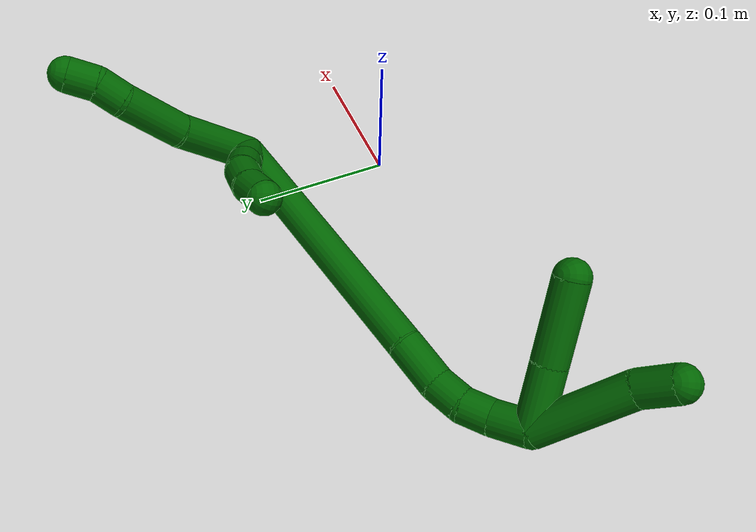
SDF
<sdf version="1.7">
 <world name="default">
  <model name="6">
   <static>0</static>
   <link name="6">
    <collision name="collision-cylinder-e_1_2_8">
     <pose>0.002443 -0.002626 0.030641 0.085496 0.079257 0.003392</pose>
     <geometry><cylinder><radius>0.0125</radius><length>0.061701</length></cylinder></geometry>
     <surface>
      <friction><ode><mu>1.16</mu><mu2>1.16</mu2><slip1>0</slip1><slip2>0</slip2></ode></friction>
      <contact><ode><kp>1e+06</kp><kd>1</kd><max_vel>0</max_vel><min_depth>0.001</min_depth></ode></contact>
     </surface>
    </collision>
    <visual name="visual-cylinder-e_1_2_8">
     <pose>0.002443 -0.002626 0.030641 0.085496 0.079257 0.003392</pose>
     <geometry><cylinder><radius>0.0125</radius><length>0.061701</length></cylinder></geometry>
     <material><ambient>0 0.392157 0.003922 1</ambient></material>
    </visual>
    <collision name="collision-cylinder-e_2_8_9">
     <pose>0.010533 -0.005071 0.084227 -0.007898 0.24136 -0.000958</pose>
     <geometry><cylinder><radius>0.0125</radius><length>0.047259</length></cylinder></geometry>
     <surface>
      <friction><ode><mu>1.16</mu><mu2>1.16</mu2><slip1>0</slip1><slip2>0</slip2></ode></friction>
      <contact><ode><kp>1e+06</kp><kd>1</kd><max_vel>0</max_vel><min_depth>0.001</min_depth></ode></contact>
     </surface>
    </collision>
    <visual name="visual-cylinder-e_2_8_9">
     <pose>0.010533 -0.005071 0.084227 -0.007898 0.24136 -0.000958</pose>
     <geometry><cylinder><radius>0.0125</radius><length>0.047259</length></cylinder></geometry>
     <material><ambient>0 0.392157 0.003922 1</ambient></material>
    </visual>
    <collision name="collision-cylinder-e_3_9_10">
     <pose>0.019716 -0.002422 0.116341 -0.26293 0.356369 -0.047618</pose>
     <geometry><cylinder><radius>0.0125</radius><length>0.020266</length></cylinder></geometry>
     <surface>
      <friction><ode><mu>1.16</mu><mu2>1.16</mu2><slip1>0</slip1><slip2>0</slip2></ode></friction>
      <contact><ode><kp>1e+06</kp><kd>1</kd><max_vel>0</max_vel><min_depth>0.001</min_depth></ode></contact>
     </surface>
    </collision>
    <visual name="visual-cylinder-e_3_9_10">
     <pose>0.019716 -0.002422 0.116341 -0.26293 0.356369 -0.047618</pose>
     <geometry><cylinder><radius>0.0125</radius><length>0.020266</length></cylinder></geometry>
     <material><ambient>0 0.392157 0.003922 1</ambient></material>
    </visual>
    <collision name="collision-cylinder-e_4_10_6">
     <pose>0.023986 0.00388 0.135136 -0.378952 0.070813 -0.013586</pose>
     <geometry><cylinder><radius>0.0125</radius><length>0.020774</length></cylinder></geometry>
     <surface>
      <friction><ode><mu>1.16</mu><mu2>1.16</mu2><slip1>0</slip1><slip2>0</slip2></ode></friction>
      <contact><ode><kp>1e+06</kp><kd>1</kd><max_vel>0</max_vel><min_depth>0.001</min_depth></ode></contact>
     </surface>
    </collision>
    <visual name="visual-cylinder-e_4_10_6">
     <pose>0.023986 0.00388 0.135136 -0.378952 0.070813 -0.013586</pose>
     <geometry><cylinder><radius>0.0125</radius><length>0.020774</length></cylinder></geometry>
     <material><ambient>0 0.392157 0.003922 1</ambient></material>
    </visual>
    <collision name="collision-cylinder-e_1_2_11">
     <pose>-0.003854 -0.011042 0.006918 1.01113 -0.287576 -0.159952</pose>
     <geometry><cylinder><radius>0.0125</radius><length>0.027176</length></cylinder></geometry>
     <surface>
      <friction><ode><mu>1.16</mu><mu2>1.16</mu2><slip1>0</slip1><slip2>0</slip2></ode></friction>
      <contact><ode><kp>1e+06</kp><kd>1</kd><max_vel>0</max_vel><min_depth>0.001</min_depth></ode></contact>
     </surface>
    </collision>
    <visual name="visual-cylinder-e_1_2_11">
     <pose>-0.003854 -0.011042 0.006918 1.01113 -0.287576 -0.159952</pose>
     <geometry><cylinder><radius>0.0125</radius><length>0.027176</length></cylinder></geometry>
     <material><ambient>0 0.392157 0.003922 1</ambient></material>
    </visual>
    <collision name="collision-cylinder-e_2_11_12">
     <pose>-0.011065 -0.032324 0.020072 1.02374 -0.272997 -0.154028</pose>
     <geometry><cylinder><radius>0.0125</radius><length>0.024901</length></cylinder></geometry>
     <surface>
      <friction><ode><mu>1.16</mu><mu2>1.16</mu2><slip1>0</slip1><slip2>0</slip2></ode></friction>
      <contact><ode><kp>1e+06</kp><kd>1</kd><max_vel>0</max_vel><min_depth>0.001</min_depth></ode></contact>
     </surface>
    </collision>
    <visual name="visual-cylinder-e_2_11_12">
     <pose>-0.011065 -0.032324 0.020072 1.02374 -0.272997 -0.154028</pose>
     <geometry><cylinder><radius>0.0125</radius><length>0.024901</length></cylinder></geometry>
     <material><ambient>0 0.392157 0.003922 1</ambient></material>
    </visual>
    <collision name="collision-cylinder-e_3_12_13">
     <pose>-0.018614 -0.054041 0.028882 1.35024 -0.342345 -0.27505</pose>
     <geometry><cylinder><radius>0.0125</radius><length>0.024973</length></cylinder></geometry>
     <surface>
      <friction><ode><mu>1.16</mu><mu2>1.16</mu2><slip1>0</slip1><slip2>0</slip2></ode></friction>
      <contact><ode><kp>1e+06</kp><kd>1</kd><max_vel>0</max_vel><min_depth>0.001</min_depth></ode></contact>
     </surface>
    </collision>
    <visual name="visual-cylinder-e_3_12_13">
     <pose>-0.018614 -0.054041 0.028882 1.35024 -0.342345 -0.27505</pose>
     <geometry><cylinder><radius>0.0125</radius><length>0.024973</length></cylinder></geometry>
     <material><ambient>0 0.392157 0.003922 1</ambient></material>
    </visual>
    <collision name="collision-cylinder-e_4_13_5">
     <pose>-0.025432 -0.076682 0.03182 1.53812 -0.23093 -0.223567</pose>
     <geometry><cylinder><radius>0.0125</radius><length>0.022949</length></cylinder></geometry>
     <surface>
      <friction><ode><mu>1.16</mu><mu2>1.16</mu2><slip1>0</slip1><slip2>0</slip2></ode></friction>
      <contact><ode><kp>1e+06</kp><kd>1</kd><max_vel>0</max_vel><min_depth>0.001</min_depth></ode></contact>
     </surface>
    </collision>
    <visual name="visual-cylinder-e_4_13_5">
     <pose>-0.025432 -0.076682 0.03182 1.53812 -0.23093 -0.223567</pose>
     <geometry><cylinder><radius>0.0125</radius><length>0.022949</length></cylinder></geometry>
     <material><ambient>0 0.392157 0.003922 1</ambient></material>
    </visual>
    <collision name="collision-cylinder-e_1_2_14">
     <pose>-0.05172 -0.077939 -0.028065 1.91643 -0.558132 -0.774314</pose>
     <geometry><cylinder><radius>0.0125</radius><length>0.195315</length></cylinder></geometry>
     <surface>
      <friction><ode><mu>1.16</mu><mu2>1.16</mu2><slip1>0</slip1><slip2>0</slip2></ode></friction>
      <contact><ode><kp>1e+06</kp><kd>1</kd><max_vel>0</max_vel><min_depth>0.001</min_depth></ode></contact>
     </surface>
    </collision>
    <visual name="visual-cylinder-e_1_2_14">
     <pose>-0.05172 -0.077939 -0.028065 1.91643 -0.558132 -0.774314</pose>
     <geometry><cylinder><radius>0.0125</radius><length>0.195315</length></cylinder></geometry>
     <material><ambient>0 0.392157 0.003922 1</ambient></material>
    </visual>
    <collision name="collision-cylinder-e_2_14_15">
     <pose>-0.113321 -0.168262 -0.06273 2.06048 -0.613495 -0.971191</pose>
     <geometry><cylinder><radius>0.0125</radius><length>0.034327</length></cylinder></geometry>
     <surface>
      <friction><ode><mu>1.16</mu><mu2>1.16</mu2><slip1>0</slip1><slip2>0</slip2></ode></friction>
      <contact><ode><kp>1e+06</kp><kd>1</kd><max_vel>0</max_vel><min_depth>0.001</min_depth></ode></contact>
     </surface>
    </collision>
    <visual name="visual-cylinder-e_2_14_15">
     <pose>-0.113321 -0.168262 -0.06273 2.06048 -0.613495 -0.971191</pose>
     <geometry><cylinder><radius>0.0125</radius><length>0.034327</length></cylinder></geometry>
     <material><ambient>0 0.392157 0.003922 1</ambient></material>
    </visual>
    <collision name="collision-cylinder-e_3_15_16">
     <pose>-0.127384 -0.190155 -0.073363 1.97184 -0.384733 -0.572162</pose>
     <geometry><cylinder><radius>0.0125</radius><length>0.022286</length></cylinder></geometry>
     <surface>
      <friction><ode><mu>1.16</mu><mu2>1.16</mu2><slip1>0</slip1><slip2>0</slip2></ode></friction>
      <contact><ode><kp>1e+06</kp><kd>1</kd><max_vel>0</max_vel><min_depth>0.001</min_depth></ode></contact>
     </surface>
    </collision>
    <visual name="visual-cylinder-e_3_15_16">
     <pose>-0.127384 -0.190155 -0.073363 1.97184 -0.384733 -0.572162</pose>
     <geometry><cylinder><radius>0.0125</radius><length>0.022286</length></cylinder></geometry>
     <material><ambient>0 0.392157 0.003922 1</ambient></material>
    </visual>
    <collision name="collision-cylinder-e_4_16_17">
     <pose>-0.132961 -0.208507 -0.083103 2.14403 -0.131711 -0.240973</pose>
     <geometry><cylinder><radius>0.0125</radius><length>0.021236</length></cylinder></geometry>
     <surface>
      <friction><ode><mu>1.16</mu><mu2>1.16</mu2><slip1>0</slip1><slip2>0</slip2></ode></friction>
      <contact><ode><kp>1e+06</kp><kd>1</kd><max_vel>0</max_vel><min_depth>0.001</min_depth></ode></contact>
     </surface>
    </collision>
    <visual name="visual-cylinder-e_4_16_17">
     <pose>-0.132961 -0.208507 -0.083103 2.14403 -0.131711 -0.240973</pose>
     <geometry><cylinder><radius>0.0125</radius><length>0.021236</length></cylinder></geometry>
     <material><ambient>0 0.392157 0.003922 1</ambient></material>
    </visual>
    <collision name="collision-cylinder-e_5_17_1">
     <pose>-0.134173 -0.229693 -0.094073 1.97375 0.013605 0.020589</pose>
     <geometry><cylinder><radius>0.0125</radius><length>0.026837</length></cylinder></geometry>
     <surface>
      <friction><ode><mu>1.16</mu><mu2>1.16</mu2><slip1>0</slip1><slip2>0</slip2></ode></friction>
      <contact><ode><kp>1e+06</kp><kd>1</kd><max_vel>0</max_vel><min_depth>0.001</min_depth></ode></contact>
     </surface>
    </collision>
    <visual name="visual-cylinder-e_5_17_1">
     <pose>-0.134173 -0.229693 -0.094073 1.97375 0.013605 0.020589</pose>
     <geometry><cylinder><radius>0.0125</radius><length>0.026837</length></cylinder></geometry>
     <material><ambient>0 0.392157 0.003922 1</ambient></material>
    </visual>
    <collision name="collision-cylinder-e_1_1_18">
     <pose>-0.112496 -0.269487 -0.109462 1.92421 0.633565 0.879297</pose>
     <geometry><cylinder><radius>0.0125</radius><length>0.072613</length></cylinder></geometry>
     <surface>
      <friction><ode><mu>1.16</mu><mu2>1.16</mu2><slip1>0</slip1><slip2>0</slip2></ode></friction>
      <contact><ode><kp>1e+06</kp><kd>1</kd><max_vel>0</max_vel><min_depth>0.001</min_depth></ode></contact>
     </surface>
    </collision>
    <visual name="visual-cylinder-e_1_1_18">
     <pose>-0.112496 -0.269487 -0.109462 1.92421 0.633565 0.879297</pose>
     <geometry><cylinder><radius>0.0125</radius><length>0.072613</length></cylinder></geometry>
     <material><ambient>0 0.392157 0.003922 1</ambient></material>
    </visual>
    <collision name="collision-cylinder-e_2_18_4">
     <pose>-0.085856 -0.30929 -0.122505 1.80269 0.385191 0.483225</pose>
     <geometry><cylinder><radius>0.0125</radius><length>0.027387</length></cylinder></geometry>
     <surface>
      <friction><ode><mu>1.16</mu><mu2>1.16</mu2><slip1>0</slip1><slip2>0</slip2></ode></friction>
      <contact><ode><kp>1e+06</kp><kd>1</kd><max_vel>0</max_vel><min_depth>0.001</min_depth></ode></contact>
     </surface>
    </collision>
    <visual name="visual-cylinder-e_2_18_4">
     <pose>-0.085856 -0.30929 -0.122505 1.80269 0.385191 0.483225</pose>
     <geometry><cylinder><radius>0.0125</radius><length>0.027387</length></cylinder></geometry>
     <material><ambient>0 0.392157 0.003922 1</ambient></material>
    </visual>
    <collision name="collision-cylinder-e_1_1_19">
     <pose>-0.112451 -0.243974 -0.09839 1.11716 1.47101 1.02937</pose>
     <geometry><cylinder><radius>0.0125</radius><length>0.043294</length></cylinder></geometry>
     <surface>
      <friction><ode><mu>1.16</mu><mu2>1.16</mu2><slip1>0</slip1><slip2>0</slip2></ode></friction>
      <contact><ode><kp>1e+06</kp><kd>1</kd><max_vel>0</max_vel><min_depth>0.001</min_depth></ode></contact>
     </surface>
    </collision>
    <visual name="visual-cylinder-e_1_1_19">
     <pose>-0.112451 -0.243974 -0.09839 1.11716 1.47101 1.02937</pose>
     <geometry><cylinder><radius>0.0125</radius><length>0.043294</length></cylinder></geometry>
     <material><ambient>0 0.392157 0.003922 1</ambient></material>
    </visual>
    <collision name="collision-cylinder-e_2_19_3">
     <pose>-0.063066 -0.250139 -0.094185 0.913844 1.3814 0.771907</pose>
     <geometry><cylinder><radius>0.0125</radius><length>0.056706</length></cylinder></geometry>
     <surface>
      <friction><ode><mu>1.16</mu><mu2>1.16</mu2><slip1>0</slip1><slip2>0</slip2></ode></friction>
      <contact><ode><kp>1e+06</kp><kd>1</kd><max_vel>0</max_vel><min_depth>0.001</min_depth></ode></contact>
     </surface>
    </collision>
    <visual name="visual-cylinder-e_2_19_3">
     <pose>-0.063066 -0.250139 -0.094185 0.913844 1.3814 0.771907</pose>
     <geometry><cylinder><radius>0.0125</radius><length>0.056706</length></cylinder></geometry>
     <material><ambient>0 0.392157 0.003922 1</ambient></material>
    </visual>
    <collision name="collision-sphere-3">
     <pose>-0.035219 -0.254366 -0.090925 0 -0 0</pose>
     <geometry><sphere><radius>0.0125</radius></sphere></geometry>
     <surface>
      <friction><ode><mu>1.16</mu><mu2>1.16</mu2><slip1>0</slip1><slip2>0</slip2></ode></friction>
      <contact><ode><kp>1e+06</kp><kd>1</kd><max_vel>0</max_vel><min_depth>0.001</min_depth></ode></contact>
     </surface>
    </collision>
    <visual name="visual-sphere-3">
     <pose>-0.035219 -0.254366 -0.090925 0 -0 0</pose>
     <geometry><sphere><radius>0.0125</radius></sphere></geometry>
     <material><ambient>0 0.392157 0.003922 1</ambient></material>
    </visual>
    <collision name="collision-sphere-19">
     <pose>-0.090912 -0.245912 -0.097445 0 -0 0</pose>
     <geometry><sphere><radius>0.0125</radius></sphere></geometry>
     <surface>
      <friction><ode><mu>1.16</mu><mu2>1.16</mu2><slip1>0</slip1><slip2>0</slip2></ode></friction>
      <contact><ode><kp>1e+06</kp><kd>1</kd><max_vel>0</max_vel><min_depth>0.001</min_depth></ode></contact>
     </surface>
    </collision>
    <visual name="visual-sphere-19">
     <pose>-0.090912 -0.245912 -0.097445 0 -0 0</pose>
     <geometry><sphere><radius>0.0125</radius></sphere></geometry>
     <material><ambient>0 0.392157 0.003922 1</ambient></material>
    </visual>
    <collision name="collision-sphere-11">
     <pose>-0.007708 -0.022084 0.013836 0 -0 0</pose>
     <geometry><sphere><radius>0.0125</radius></sphere></geometry>
     <surface>
      <friction><ode><mu>1.16</mu><mu2>1.16</mu2><slip1>0</slip1><slip2>0</slip2></ode></friction>
      <contact><ode><kp>1e+06</kp><kd>1</kd><max_vel>0</max_vel><min_depth>0.001</min_depth></ode></contact>
     </surface>
    </collision>
    <visual name="visual-sphere-11">
     <pose>-0.007708 -0.022084 0.013836 0 -0 0</pose>
     <geometry><sphere><radius>0.0125</radius></sphere></geometry>
     <material><ambient>0 0.392157 0.003922 1</ambient></material>
    </visual>
    <collision name="collision-sphere-6">
     <pose>0.024721 0.007713 0.144762 0 -0 0</pose>
     <geometry><sphere><radius>0.0125</radius></sphere></geometry>
     <surface>
      <friction><ode><mu>1.16</mu><mu2>1.16</mu2><slip1>0</slip1><slip2>0</slip2></ode></friction>
      <contact><ode><kp>1e+06</kp><kd>1</kd><max_vel>0</max_vel><min_depth>0.001</min_depth></ode></contact>
     </surface>
    </collision>
    <visual name="visual-sphere-6">
     <pose>0.024721 0.007713 0.144762 0 -0 0</pose>
     <geometry><sphere><radius>0.0125</radius></sphere></geometry>
     <material><ambient>0 0.392157 0.003922 1</ambient></material>
    </visual>
    <collision name="collision-sphere-10">
     <pose>0.023251 4.7e-05 0.125511 0 -0 0</pose>
     <geometry><sphere><radius>0.0125</radius></sphere></geometry>
     <surface>
      <friction><ode><mu>1.16</mu><mu2>1.16</mu2><slip1>0</slip1><slip2>0</slip2></ode></friction>
      <contact><ode><kp>1e+06</kp><kd>1</kd><max_vel>0</max_vel><min_depth>0.001</min_depth></ode></contact>
     </surface>
    </collision>
    <visual name="visual-sphere-10">
     <pose>0.023251 4.7e-05 0.125511 0 -0 0</pose>
     <geometry><sphere><radius>0.0125</radius></sphere></geometry>
     <material><ambient>0 0.392157 0.003922 1</ambient></material>
    </visual>
    <collision name="collision-sphere-9">
     <pose>0.016181 -0.00489 0.10717 0 -0 0</pose>
     <geometry><sphere><radius>0.0125</radius></sphere></geometry>
     <surface>
      <friction><ode><mu>1.16</mu><mu2>1.16</mu2><slip1>0</slip1><slip2>0</slip2></ode></friction>
      <contact><ode><kp>1e+06</kp><kd>1</kd><max_vel>0</max_vel><min_depth>0.001</min_depth></ode></contact>
     </surface>
    </collision>
    <visual name="visual-sphere-9">
     <pose>0.016181 -0.00489 0.10717 0 -0 0</pose>
     <geometry><sphere><radius>0.0125</radius></sphere></geometry>
     <material><ambient>0 0.392157 0.003922 1</ambient></material>
    </visual>
    <collision name="collision-sphere-2">
     <geometry><sphere><radius>0.0125</radius></sphere></geometry>
     <surface>
      <friction><ode><mu>1.16</mu><mu2>1.16</mu2><slip1>0</slip1><slip2>0</slip2></ode></friction>
      <contact><ode><kp>1e+06</kp><kd>1</kd><max_vel>0</max_vel><min_depth>0.001</min_depth></ode></contact>
     </surface>
    </collision>
    <visual name="visual-sphere-2">
     <geometry><sphere><radius>0.0125</radius></sphere></geometry>
     <material><ambient>0 0.392157 0.003922 1</ambient></material>
    </visual>
    <collision name="collision-sphere-8">
     <pose>0.004885 -0.005252 0.061283 0 -0 0</pose>
     <geometry><sphere><radius>0.0125</radius></sphere></geometry>
     <surface>
      <friction><ode><mu>1.16</mu><mu2>1.16</mu2><slip1>0</slip1><slip2>0</slip2></ode></friction>
      <contact><ode><kp>1e+06</kp><kd>1</kd><max_vel>0</max_vel><min_depth>0.001</min_depth></ode></contact>
     </surface>
    </collision>
    <visual name="visual-sphere-8">
     <pose>0.004885 -0.005252 0.061283 0 -0 0</pose>
     <geometry><sphere><radius>0.0125</radius></sphere></geometry>
     <material><ambient>0 0.392157 0.003922 1</ambient></material>
    </visual>
    <collision name="collision-sphere-12">
     <pose>-0.014422 -0.042564 0.026309 0 -0 0</pose>
     <geometry><sphere><radius>0.0125</radius></sphere></geometry>
     <surface>
      <friction><ode><mu>1.16</mu><mu2>1.16</mu2><slip1>0</slip1><slip2>0</slip2></ode></friction>
      <contact><ode><kp>1e+06</kp><kd>1</kd><max_vel>0</max_vel><min_depth>0.001</min_depth></ode></contact>
     </surface>
    </collision>
    <visual name="visual-sphere-12">
     <pose>-0.014422 -0.042564 0.026309 0 -0 0</pose>
     <geometry><sphere><radius>0.0125</radius></sphere></geometry>
     <material><ambient>0 0.392157 0.003922 1</ambient></material>
    </visual>
    <collision name="collision-sphere-13">
     <pose>-0.022805 -0.065518 0.031455 0 -0 0</pose>
     <geometry><sphere><radius>0.0125</radius></sphere></geometry>
     <surface>
      <friction><ode><mu>1.16</mu><mu2>1.16</mu2><slip1>0</slip1><slip2>0</slip2></ode></friction>
      <contact><ode><kp>1e+06</kp><kd>1</kd><max_vel>0</max_vel><min_depth>0.001</min_depth></ode></contact>
     </surface>
    </collision>
    <visual name="visual-sphere-13">
     <pose>-0.022805 -0.065518 0.031455 0 -0 0</pose>
     <geometry><sphere><radius>0.0125</radius></sphere></geometry>
     <material><ambient>0 0.392157 0.003922 1</ambient></material>
    </visual>
    <collision name="collision-sphere-5">
     <pose>-0.028058 -0.087846 0.032185 0 -0 0</pose>
     <geometry><sphere><radius>0.0125</radius></sphere></geometry>
     <surface>
      <friction><ode><mu>1.16</mu><mu2>1.16</mu2><slip1>0</slip1><slip2>0</slip2></ode></friction>
      <contact><ode><kp>1e+06</kp><kd>1</kd><max_vel>0</max_vel><min_depth>0.001</min_depth></ode></contact>
     </surface>
    </collision>
    <visual name="visual-sphere-5">
     <pose>-0.028058 -0.087846 0.032185 0 -0 0</pose>
     <geometry><sphere><radius>0.0125</radius></sphere></geometry>
     <material><ambient>0 0.392157 0.003922 1</ambient></material>
    </visual>
    <collision name="collision-sphere-14">
     <pose>-0.103439 -0.155877 -0.05613 0 -0 0</pose>
     <geometry><sphere><radius>0.0125</radius></sphere></geometry>
     <surface>
      <friction><ode><mu>1.16</mu><mu2>1.16</mu2><slip1>0</slip1><slip2>0</slip2></ode></friction>
      <contact><ode><kp>1e+06</kp><kd>1</kd><max_vel>0</max_vel><min_depth>0.001</min_depth></ode></contact>
     </surface>
    </collision>
    <visual name="visual-sphere-14">
     <pose>-0.103439 -0.155877 -0.05613 0 -0 0</pose>
     <geometry><sphere><radius>0.0125</radius></sphere></geometry>
     <material><ambient>0 0.392157 0.003922 1</ambient></material>
    </visual>
    <collision name="collision-sphere-15">
     <pose>-0.123202 -0.180646 -0.069331 0 -0 0</pose>
     <geometry><sphere><radius>0.0125</radius></sphere></geometry>
     <surface>
      <friction><ode><mu>1.16</mu><mu2>1.16</mu2><slip1>0</slip1><slip2>0</slip2></ode></friction>
      <contact><ode><kp>1e+06</kp><kd>1</kd><max_vel>0</max_vel><min_depth>0.001</min_depth></ode></contact>
     </surface>
    </collision>
    <visual name="visual-sphere-15">
     <pose>-0.123202 -0.180646 -0.069331 0 -0 0</pose>
     <geometry><sphere><radius>0.0125</radius></sphere></geometry>
     <material><ambient>0 0.392157 0.003922 1</ambient></material>
    </visual>
    <collision name="collision-sphere-16">
     <pose>-0.131566 -0.199664 -0.077395 0 -0 0</pose>
     <geometry><sphere><radius>0.0125</radius></sphere></geometry>
     <surface>
      <friction><ode><mu>1.16</mu><mu2>1.16</mu2><slip1>0</slip1><slip2>0</slip2></ode></friction>
      <contact><ode><kp>1e+06</kp><kd>1</kd><max_vel>0</max_vel><min_depth>0.001</min_depth></ode></contact>
     </surface>
    </collision>
    <visual name="visual-sphere-16">
     <pose>-0.131566 -0.199664 -0.077395 0 -0 0</pose>
     <geometry><sphere><radius>0.0125</radius></sphere></geometry>
     <material><ambient>0 0.392157 0.003922 1</ambient></material>
    </visual>
    <collision name="collision-sphere-17">
     <pose>-0.134355 -0.21735 -0.088812 0 -0 0</pose>
     <geometry><sphere><radius>0.0125</radius></sphere></geometry>
     <surface>
      <friction><ode><mu>1.16</mu><mu2>1.16</mu2><slip1>0</slip1><slip2>0</slip2></ode></friction>
      <contact><ode><kp>1e+06</kp><kd>1</kd><max_vel>0</max_vel><min_depth>0.001</min_depth></ode></contact>
     </surface>
    </collision>
    <visual name="visual-sphere-17">
     <pose>-0.134355 -0.21735 -0.088812 0 -0 0</pose>
     <geometry><sphere><radius>0.0125</radius></sphere></geometry>
     <material><ambient>0 0.392157 0.003922 1</ambient></material>
    </visual>
    <collision name="collision-sphere-1">
     <pose>-0.13399 -0.242035 -0.099335 0 -0 0</pose>
     <geometry><sphere><radius>0.0125</radius></sphere></geometry>
     <surface>
      <friction><ode><mu>1.16</mu><mu2>1.16</mu2><slip1>0</slip1><slip2>0</slip2></ode></friction>
      <contact><ode><kp>1e+06</kp><kd>1</kd><max_vel>0</max_vel><min_depth>0.001</min_depth></ode></contact>
     </surface>
    </collision>
    <visual name="visual-sphere-1">
     <pose>-0.13399 -0.242035 -0.099335 0 -0 0</pose>
     <geometry><sphere><radius>0.0125</radius></sphere></geometry>
     <material><ambient>0 0.392157 0.003922 1</ambient></material>
    </visual>
    <collision name="collision-sphere-18">
     <pose>-0.091001 -0.296939 -0.119589 0 -0 0</pose>
     <geometry><sphere><radius>0.0125</radius></sphere></geometry>
     <surface>
      <friction><ode><mu>1.16</mu><mu2>1.16</mu2><slip1>0</slip1><slip2>0</slip2></ode></friction>
      <contact><ode><kp>1e+06</kp><kd>1</kd><max_vel>0</max_vel><min_depth>0.001</min_depth></ode></contact>
     </surface>
    </collision>
    <visual name="visual-sphere-18">
     <pose>-0.091001 -0.296939 -0.119589 0 -0 0</pose>
     <geometry><sphere><radius>0.0125</radius></sphere></geometry>
     <material><ambient>0 0.392157 0.003922 1</ambient></material>
    </visual>
    <collision name="collision-sphere-4">
     <pose>-0.080711 -0.32164 -0.125422 0 -0 0</pose>
     <geometry><sphere><radius>0.0125</radius></sphere></geometry>
     <surface>
      <friction><ode><mu>1.16</mu><mu2>1.16</mu2><slip1>0</slip1><slip2>0</slip2></ode></friction>
      <contact><ode><kp>1e+06</kp><kd>1</kd><max_vel>0</max_vel><min_depth>0.001</min_depth></ode></contact>
     </surface>
    </collision>
    <visual name="visual-sphere-4">
     <pose>-0.080711 -0.32164 -0.125422 0 -0 0</pose>
     <geometry><sphere><radius>0.0125</radius></sphere></geometry>
     <material><ambient>0 0.392157 0.003922 1</ambient></material>
    </visual>
    <inertial>
     <pose>-0.056136 -0.124265 -0.028383 0 -0 0</pose>
     <mass>0.75</mass>
     <inertia>
      <ixx>0.000104</ixx>
      <ixy>0</ixy>
      <ixz>0</ixz>
      <iyy>-0.000249</iyy>
      <iyz>0</iyz>
      <izz>0.000843</izz>
     </inertia>
    </inertial>
   </link>
   <pose>0.010687 0.1033 0.043983 -0.755063 -0.717494 -0.666652</pose>
  </model>
 </world>
</sdf>
